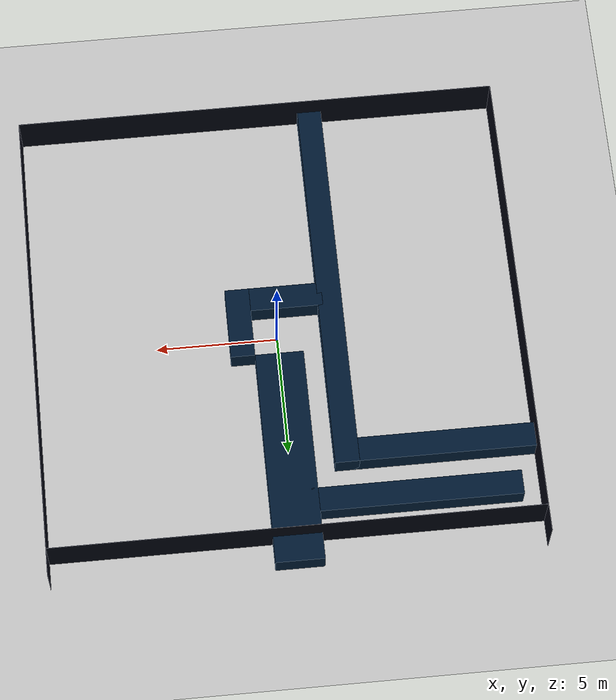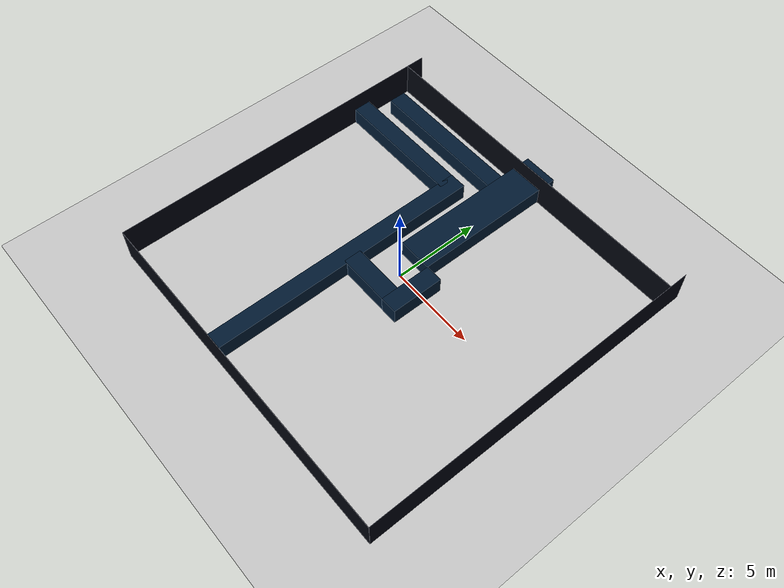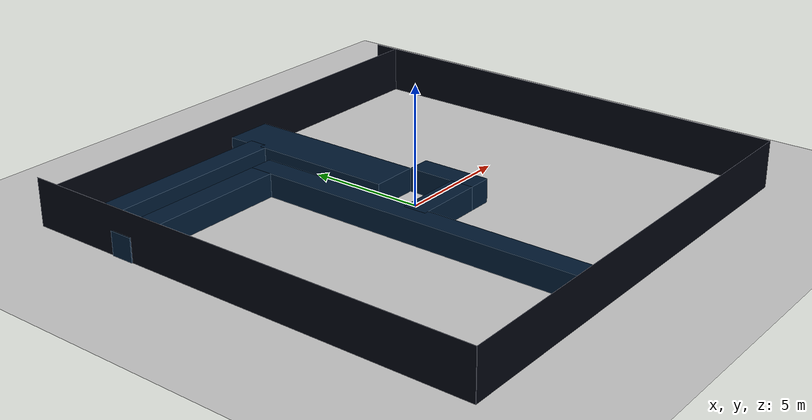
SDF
<?xml version="1.0"?>
<sdf version='1.8'>
    <world name='maze'>
        <physics name='1ms' type='ignored'>
            <max_step_size>0.003</max_step_size>
            <real_time_factor>1</real_time_factor>
            <real_time_update_rate>1000</real_time_update_rate>
        </physics>
        <plugin name='gz::sim::systems::Physics' filename='gz-sim-physics-system'/>
        <plugin name='gz::sim::systems::UserCommands' filename='gz-sim-user-commands-system'/>
        <plugin name='gz::sim::systems::SceneBroadcaster' filename='gz-sim-scene-broadcaster-system'/>
        <plugin name='gz::sim::systems::Contact' filename='gz-sim-contact-system'/>
        <light name='sun' type='directional'>
            <cast_shadows>1</cast_shadows>
            <pose>0 0 10 0 -0 0</pose>
            <diffuse>0.8 0.8 0.8 1</diffuse>
            <specular>0.2 0.2 0.2 1</specular>
            <attenuation>
                <range>1000</range>
                <constant>0.90000000000000002</constant>
                <linear>0.01</linear>
                <quadratic>0.001</quadratic>
            </attenuation>
            <direction>-0.5 0.1 -0.9</direction>
            <spot>
                <inner_angle>0</inner_angle>
                <outer_angle>0</outer_angle>
                <falloff>0</falloff>
            </spot>
        </light>
        <gravity>0 0 -9.8</gravity>
        <magnetic_field>6e-06 2.3e-05 -4.2e-05</magnetic_field>
        <atmosphere type='adiabatic' />
        <scene>
            <ambient>0.4 0.4 0.4 1</ambient>
            <background>0.7 0.7 0.7 1</background>
            <shadows>1</shadows>
        </scene>
        <model name='ground_plane'>
            <static>1</static>
            <link name='link'>
                <collision name='collision'>
                    <geometry>
                        <plane>
                            <normal>0 0 1</normal>
                            <size>100 100</size>
                        </plane>
                    </geometry>
                    <surface>
                        <friction>
                            <ode />
                        </friction>
                        <bounce />
                        <contact />
                    </surface>
                </collision>
                <visual name='visual'>
                    <geometry>
                        <plane>
                            <normal>0 0 1</normal>
                            <size>100 100</size>
                        </plane>
                    </geometry>
                    <material>
                        <ambient>0.8 0.8 0.8 1</ambient>
                        <diffuse>0.8 0.8 0.8 1</diffuse>
                        <specular>0.8 0.8 0.8 1</specular>
                    </material>
                </visual>
            </link>
            <pose>0 0 0 0 -0 0</pose>
        </model>

        <model name='border'>
            <pose>0 0 1 0 0 0</pose>
            <static>true</static>
            <link name='wall1'>
                <pose>-10.005 0 0 0 0 0</pose>
                <collision name='wall1_collision'>
                    <geometry>
                        <box>
                            <size>0.01 20 2</size>
                        </box>
                    </geometry>
                </collision>
                <visual name='wall1_visual'>
                    <geometry>
                        <box>
                            <size>0.01 20 2</size>
                        </box>
                    </geometry>
                    <material>
                        <ambient>0.1 0.1 0.1 1</ambient>
                        <diffuse>0 0.01 0.05 1</diffuse>
                        <specular>0 0.01 0.05 1</specular>
                    </material>
                </visual>
            </link>
            <link name='wall2'>
                <pose>10.005 0 0 0 0 0</pose>
                <collision name='wall2_collision'>
                    <geometry>
                        <box>
                            <size>0.01 20 2</size>
                        </box>
                    </geometry>
                </collision>
                <visual name='wall2_visual'>
                    <geometry>
                        <box>
                            <size>0.01 20 2</size>
                        </box>
                    </geometry>
                    <material>
                        <ambient>0.1 0.1 0.1 1</ambient>
                        <diffuse>0 0.01 0.05 1</diffuse>
                        <specular>0 0.01 0.05 1</specular>
                    </material>
                </visual>
            </link>
            <link name='wall3'>
                <pose>0 8.9 0 0 0 0</pose>
                <collision name='wall3_collision'>
                    <geometry>
                        <box>
                            <size>20 0.01 2</size>
                        </box>
                    </geometry>
                </collision>
                <visual name='wall3_visual'>
                    <geometry>
                        <box>
                            <size>20 0.01 2</size>
                        </box>
                    </geometry>
                    <material>
                        <ambient>0.1 0.1 0.1 1</ambient>
                        <diffuse>0 0.01 0.05 1</diffuse>
                        <specular>0 0.01 0.05 1</specular>
                    </material>
                </visual>
            </link>
            <link name='wall4'>
                <pose>0 -10.005 0 0 0 0</pose>
                <collision name='wall4_collision'>
                    <geometry>
                        <box>
                            <size>20 0.01 2</size>
                        </box>
                    </geometry>
                    <material>
                        <ambient>0.1 0.1 0.1 1</ambient>
                        <diffuse>0 0.01 0.05 1</diffuse>
                        <specular>0 0.01 0.05 1</specular>
                    </material>
                </collision>
                <visual name='wall4_visual'>
                    <geometry>
                        <box>
                            <size>20 0.01 2</size>
                        </box>
                    </geometry>
                    <material>
                        <ambient>0.1 0.1 0.1 1</ambient>
                        <diffuse>0 0.01 0.05 1</diffuse>
                        <specular>0 0.01 0.05 1</specular>
                    </material>
                </visual>
            </link>
        </model>

        <model name='obstacles'>
            <pose>0 0 0.5 0 0 0</pose>
            <static>true</static>
            <link name='wall3'>
                <pose>-2.3 -2 0 0 0 0</pose>
                <collision name='wall3_collision'>
                    <geometry>
                        <box>
                            <size>1 16 1</size>
                        </box>
                    </geometry>
                </collision>
                <visual name='wall3_visual'>
                    <geometry>
                        <box>
                            <size>1 16 1</size>
                        </box>
                    </geometry>
                    <material>
                        <ambient>0.1 0.1 0.1 1</ambient>
                        <diffuse>0 0.1 0.2 1</diffuse>
                        <specular>0 0.01 0.05 1</specular>
                    </material>
                </visual>
            </link>
            <link name='wall10'>
                <pose>-6.3 5.5 0 0 0 0</pose>
                <collision name='wall10_collision'>
                    <geometry>
                        <box>
                            <size>7.5 1 1</size>
                        </box>
                    </geometry>
                </collision>
                <visual name='wall10_visual'>
                    <geometry>
                        <box>
                            <size>7.5 1 1</size>
                        </box>
                    </geometry>
                    <material>
                        <ambient>0.1 0.1 0.1 1</ambient>
                        <diffuse>0 0.1 0.2 1</diffuse>
                        <specular>0 0.01 0.05 1</specular>
                    </material>
                </visual>
            </link>

            <link name='wall11'>
                <pose>-5 7.5 0 0 0 0</pose>
                <collision name='wall11_collision'>
                    <geometry>
                        <box>
                            <size>8.5 1 1</size>
                        </box>
                    </geometry>
                </collision>
                <visual name='wall11_visual'>
                    <geometry>
                        <box>
                            <size>8.5 1 1</size>
                        </box>
                    </geometry>
                    <material>
                        <ambient>0.1 0.1 0.1 1</ambient>
                        <diffuse>0 0.1 0.2 1</diffuse>
                        <specular>0 0.01 0.05 1</specular>
                    </material>
                </visual>
            </link>
            <link name='wall12'>
                <pose>0 5.5 0 0 0 0</pose>
                <collision name='wall12_collision'>
                    <geometry>
                        <box>
                            <size>2 9 1</size>
                        </box>
                    </geometry>
                </collision>
                <visual name='wall12_visual'>
                    <geometry>
                        <box>
                            <size>2 9 1</size>
                        </box>
                    </geometry>
                    <material>
                        <ambient>0.1 0.1 0.1 1</ambient>
                        <diffuse>0 0.1 0.2 1</diffuse>
                        <specular>0 0.01 0.05 1</specular>
                    </material>
                </visual>
            </link>

            <link name='wall13'>
                <pose>-0.5 -1.5 0 0 0 0</pose>
                <collision name='wall13_collision'>
                    <geometry>
                        <box>
                            <size>3 1 1</size>
                        </box>
                    </geometry>
                </collision>
                <visual name='wall13_visual'>
                    <geometry>
                        <box>
                            <size>3 1 1</size>
                        </box>
                    </geometry>
                    <material>
                        <ambient>0.1 0.1 0.1 1</ambient>
                        <diffuse>0 0.1 0.2 1</diffuse>
                        <specular>0 0.01 0.05 1</specular>
                    </material>
                </visual>
            </link>

            <link name='wall22'>
                <pose>1.5 -0.5 0 0 0 0</pose>
                <collision name='wall22_collision'>
                    <geometry>
                        <box>
                            <size>1 3 1</size>
                        </box>
                    </geometry>
                </collision>
                <visual name='wall22_visual'>
                    <geometry>
                        <box>
                            <size>1 3 1</size>
                        </box>
                    </geometry>
                    <material>
                        <ambient>0.1 0.1 0.1 1</ambient>
                        <diffuse>0 0.1 0.2 1</diffuse>
                        <specular>0 0.01 0.05 1</specular>
                    </material>
                </visual>
            </link>
        </model>
    </world>
</sdf>
